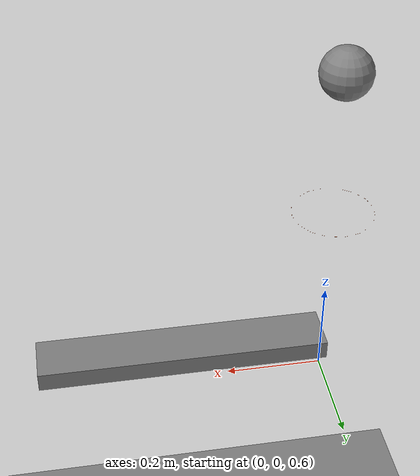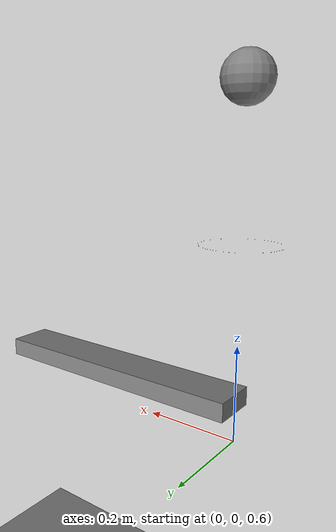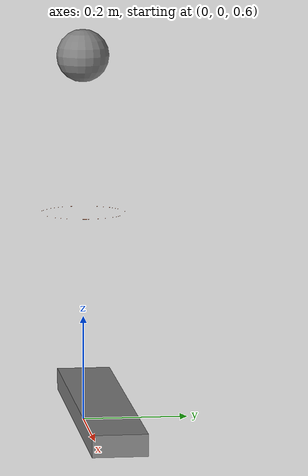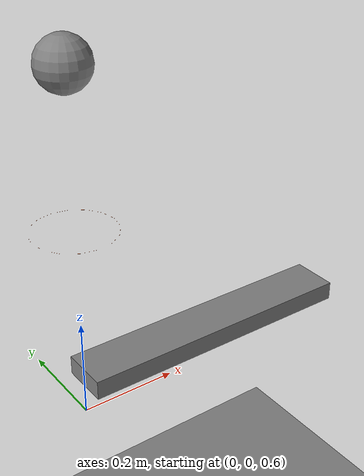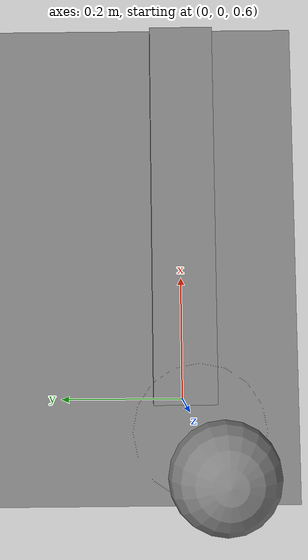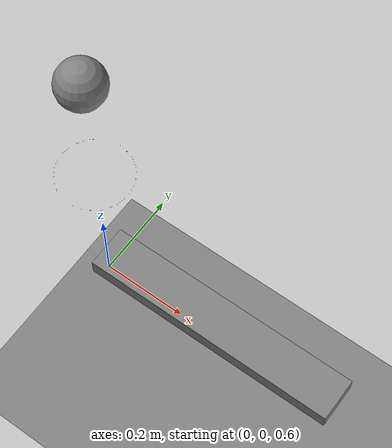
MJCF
<mujoco model="vertical_ring_drop_onto_a_centre-hinged_lever">
  <compiler angle="radian"/>
  <option timestep="0.002"/>
  <worldbody>
    <geom name="floor" type="plane" size="6 6 0.1" friction="0.72 0.005 0.0001"/>
    <body name="ring1">
      <geom name="ring1_rim00" type="capsule" size="5e-05" fromto="0.0816183 0 1 0.0754055 0.0312346 1" friction="0.72 0.005 0.0001" solref="0.01 1" rgba="0.9 0.3 0.05 1"/>
      <geom name="ring1_rim01" type="capsule" size="5e-05" fromto="0.0754055 0.0312346 1 0.0577128 0.0577128 1" friction="0.72 0.005 0.0001" solref="0.01 1" rgba="0.9 0.3 0.05 1"/>
      <geom name="ring1_rim02" type="capsule" size="5e-05" fromto="0.0577128 0.0577128 1 0.0312346 0.0754055 1" friction="0.72 0.005 0.0001" solref="0.01 1" rgba="0.9 0.3 0.05 1"/>
      <geom name="ring1_rim03" type="capsule" size="5e-05" fromto="0.0312346 0.0754055 1 0 0.0816183 1" friction="0.72 0.005 0.0001" solref="0.01 1" rgba="0.9 0.3 0.05 1"/>
      <geom name="ring1_rim04" type="capsule" size="5e-05" fromto="0 0.0816183 1 -0.0312346 0.0754055 1" friction="0.72 0.005 0.0001" solref="0.01 1" rgba="0.9 0.3 0.05 1"/>
      <geom name="ring1_rim05" type="capsule" size="5e-05" fromto="-0.0312346 0.0754055 1 -0.0577128 0.0577128 1" friction="0.72 0.005 0.0001" solref="0.01 1" rgba="0.9 0.3 0.05 1"/>
      <geom name="ring1_rim06" type="capsule" size="5e-05" fromto="-0.0577128 0.0577128 1 -0.0754055 0.0312346 1" friction="0.72 0.005 0.0001" solref="0.01 1" rgba="0.9 0.3 0.05 1"/>
      <geom name="ring1_rim07" type="capsule" size="5e-05" fromto="-0.0754055 0.0312346 1 -0.0816183 0 1" friction="0.72 0.005 0.0001" solref="0.01 1" rgba="0.9 0.3 0.05 1"/>
      <geom name="ring1_rim08" type="capsule" size="5e-05" fromto="-0.0816183 0 1 -0.0754055 -0.0312346 1" friction="0.72 0.005 0.0001" solref="0.01 1" rgba="0.9 0.3 0.05 1"/>
      <geom name="ring1_rim09" type="capsule" size="5e-05" fromto="-0.0754055 -0.0312346 1 -0.0577128 -0.0577128 1" friction="0.72 0.005 0.0001" solref="0.01 1" rgba="0.9 0.3 0.05 1"/>
      <geom name="ring1_rim10" type="capsule" size="5e-05" fromto="-0.0577128 -0.0577128 1 -0.0312346 -0.0754055 1" friction="0.72 0.005 0.0001" solref="0.01 1" rgba="0.9 0.3 0.05 1"/>
      <geom name="ring1_rim11" type="capsule" size="5e-05" fromto="-0.0312346 -0.0754055 1 0 -0.0816183 1" friction="0.72 0.005 0.0001" solref="0.01 1" rgba="0.9 0.3 0.05 1"/>
      <geom name="ring1_rim12" type="capsule" size="5e-05" fromto="0 -0.0816183 1 0.0312346 -0.0754055 1" friction="0.72 0.005 0.0001" solref="0.01 1" rgba="0.9 0.3 0.05 1"/>
      <geom name="ring1_rim13" type="capsule" size="5e-05" fromto="0.0312346 -0.0754055 1 0.0577128 -0.0577128 1" friction="0.72 0.005 0.0001" solref="0.01 1" rgba="0.9 0.3 0.05 1"/>
      <geom name="ring1_rim14" type="capsule" size="5e-05" fromto="0.0577128 -0.0577128 1 0.0754055 -0.0312346 1" friction="0.72 0.005 0.0001" solref="0.01 1" rgba="0.9 0.3 0.05 1"/>
      <geom name="ring1_rim15" type="capsule" size="5e-05" fromto="0.0754055 -0.0312346 1 0.0816183 0 1" friction="0.72 0.005 0.0001" solref="0.01 1" rgba="0.9 0.3 0.05 1"/>
    </body>
    <body name="lever1" pos="0.3 0 0.68">
      <joint name="lever1_hinge" type="hinge" pos="0 0 0" axis="0 1 0" damping="0.04"/>
      <geom name="lever1" type="box" pos="0 0 0" size="0.3 0.05 0.02" mass="0.5" friction="0.72 0.005 0.0001" solref="0.01 1"/>
    </body>
    <body name="ball1" pos="0 0 1.3">
      <freejoint/>
      <geom name="ball1" type="sphere" pos="0 0 0" size="0.05" mass="0.2" condim="6" friction="0.72 0.005 0.0001" solref="0.01 1"/>
    </body>
  </worldbody>
  <keyframe>
    <key name="start" qpos="0 0 0 1.3 1 0 0 0" qvel="0 0 0 0 0 0 0"/>
  </keyframe>
</mujoco>
